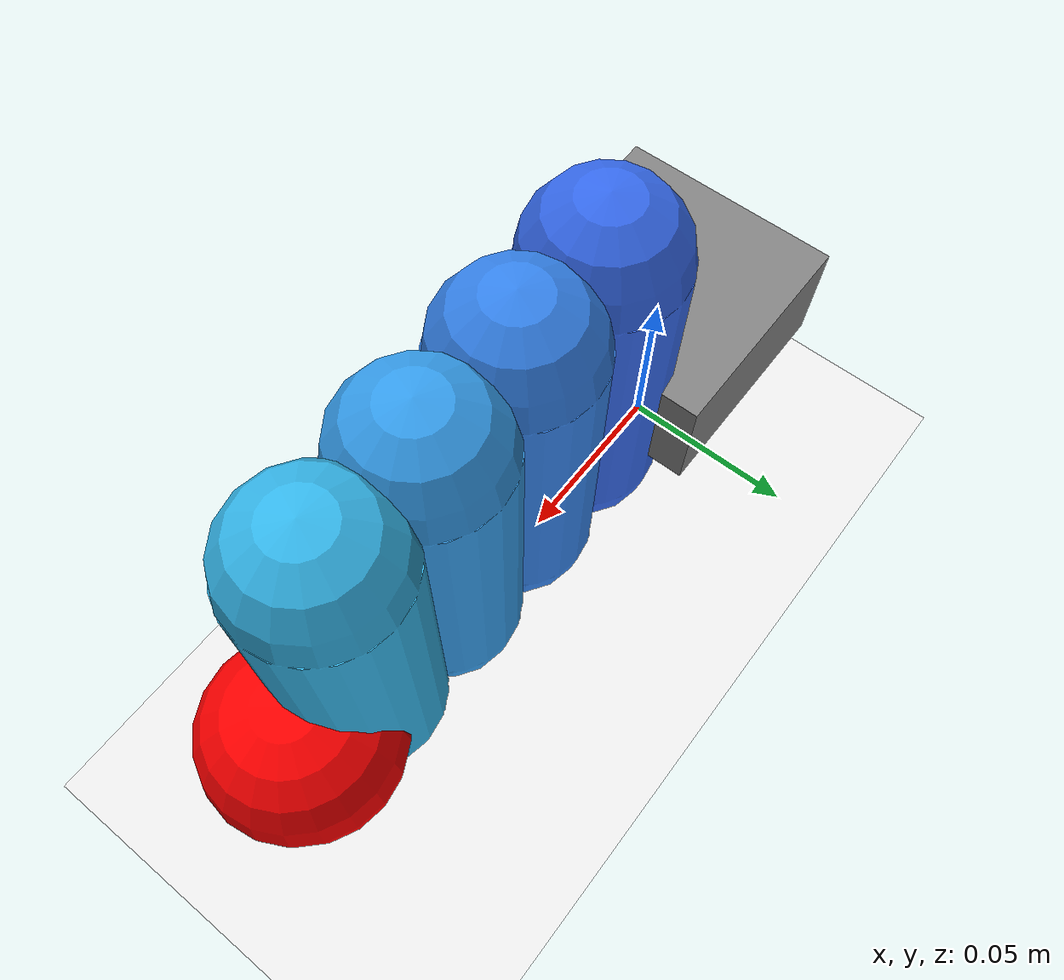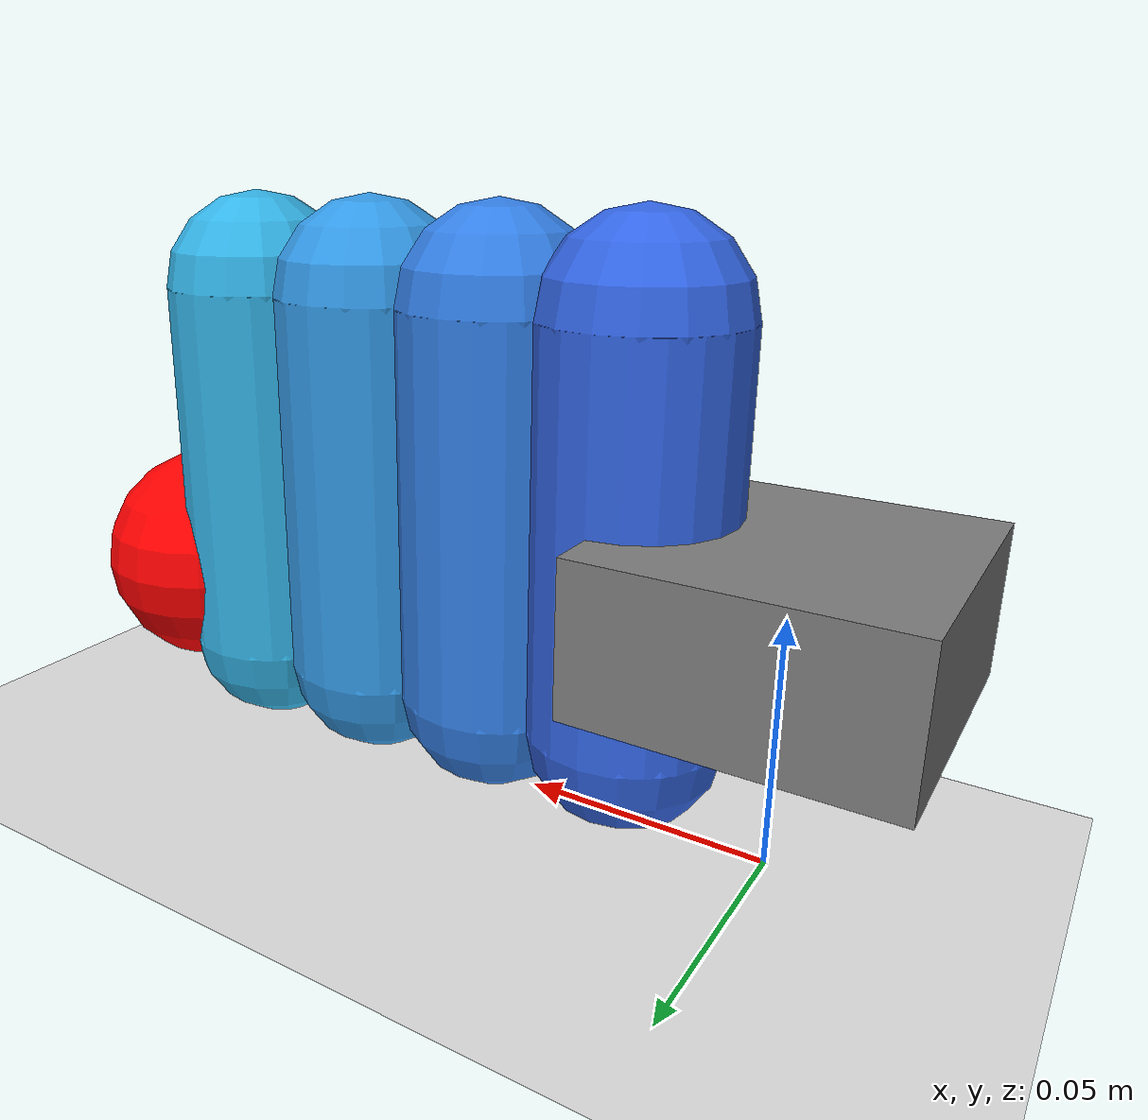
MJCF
<mujoco model="soft_tentacle_grasper">

    <!-- Compiler & Options -->
    <compiler angle="radian" meshdir="meshes"/>
    <option timestep="0.002" gravity="0 0 -9.81"/>

    <!-- Default Parameters -->
    <default>
        <joint damping="1.0"/>
        <geom friction="1.0 0.5 0.001" density="800"/>
        <site size="0.002" rgba="0 0 1 1"/>
    </default>

    <!-- Assets -->
    <asset>
        <mesh name="robot_mesh" file="robot.stl"/>
    </asset>

    <!-- World -->
    <worldbody>

        <!-- Ground -->
        <geom type="plane" size="2 2 0.1" rgba="0.9 0.9 0.9 1"/>

        <!-- Object to grasp -->
        <body name="object" pos="0.14 0 0.035">
            <geom type="sphere" size="0.025" mass="0.05" rgba="1 0 0 1"/>
        </body>

        <!-- Soft Robot -->
        <body name="robot_base" pos="0 0 0.03">

            <!-- Free base -->
            <joint type="free"/>

            <!-- Simple visible base (replace mesh for clear visualization) -->
            <geom name="base_geom" type="box" size="0.03 0.03 0.015" pos="0 0 0.02" rgba="0.5 0.5 0.5 1"/>

            <!-- Cable Routing Sites -->
            <site name="s0" pos="0.00  0.00 0.03"/>
            <site name="s1" pos="0.03  0.00 0.03"/>
            <site name="s2" pos="0.06  0.00 0.03"/>
            <site name="s3" pos="0.09  0.00 0.03"/>
            <site name="s4" pos="0.12  0.00 0.03"/>

            <!-- Virtual Soft Joints -->
            <body name="seg1" pos="0.03 0 0.03">
                <joint name="j1" type="hinge" axis="0 1 0"/>
                <geom name="seg1_geom" type="capsule" fromto="0 0 -0.04 0 0 0.04" size="0.02" rgba="0.2 0.4 0.9 1"/>
                <site name="seg1_tip" pos="0 0 0.04" size="0.006"/>
            </body>

            <body name="seg2" pos="0.06 0 0.03">
                <joint name="j2" type="hinge" axis="0 1 0"/>
                <geom name="seg2_geom" type="capsule" fromto="0 0 -0.04 0 0 0.04" size="0.02" rgba="0.2 0.5 0.9 1"/>
                <site name="seg2_tip" pos="0 0 0.04" size="0.006"/>
            </body>

            <body name="seg3" pos="0.09 0 0.03">
                <joint name="j3" type="hinge" axis="0 1 0"/>
                <geom name="seg3_geom" type="capsule" fromto="0 0 -0.04 0 0 0.04" size="0.02" rgba="0.2 0.6 0.9 1"/>
                <site name="seg3_tip" pos="0 0 0.04" size="0.006"/>
            </body>

            <body name="seg4" pos="0.12 0 0.03">
                <joint name="j4" type="hinge" axis="0 1 0"/>
                <geom name="seg4_geom" type="capsule" fromto="0 0 -0.04 0 0 0.04" size="0.02" rgba="0.2 0.7 0.9 1"/>
                <site name="seg4_tip" pos="0 0 0.04" size="0.006"/>
            </body>

            <!-- Camera for clear viewing -->
            <camera name="maincam" pos="0.22 -0.4 0.12" euler="15 45 0"/>

        </body>
    </worldbody>

    <!-- Tendon (Cable) -->
    <tendon>
        <spatial name="wrap_cable" width="0.003">
            <site site="s0"/>
            <site site="s1"/>
            <site site="s2"/>
            <site site="s3"/>
            <site site="s4"/>
        </spatial>
    </tendon>

    <!-- Actuator -->
    <actuator>
        <motor tendon="wrap_cable"
               gear="30"
               ctrlrange="0 1"/>
    </actuator>

</mujoco>
